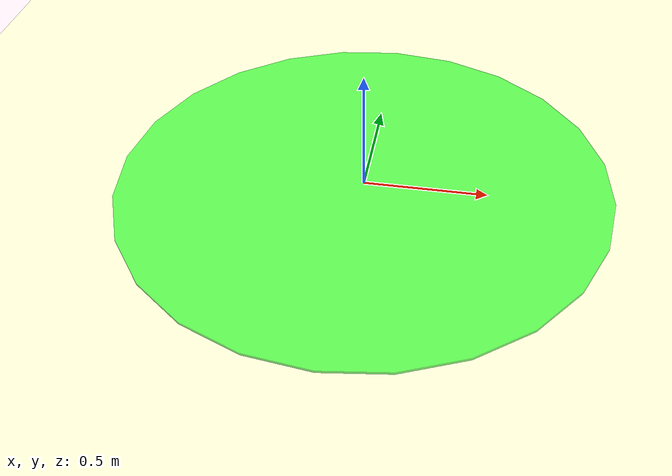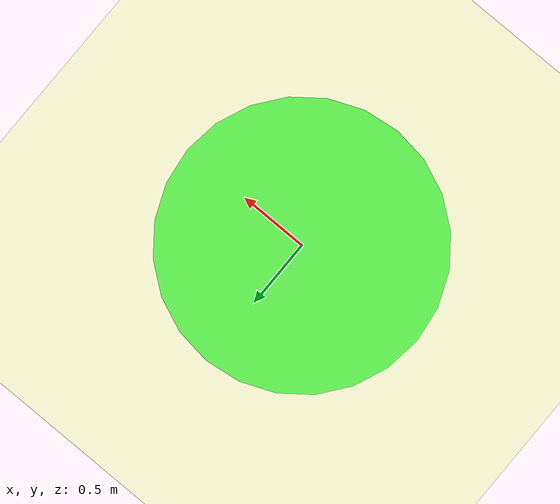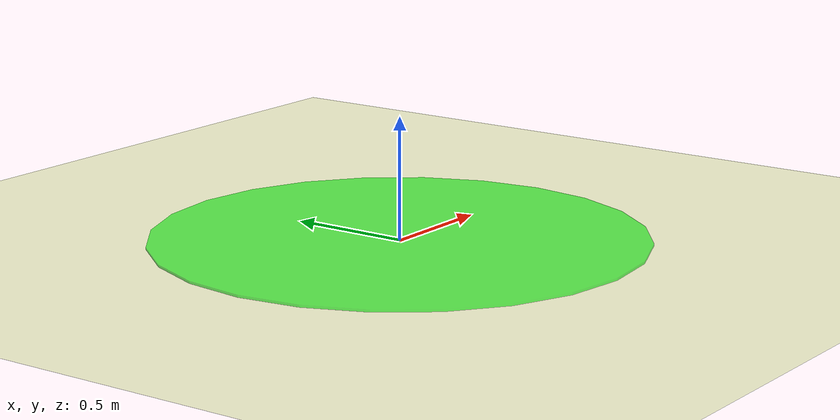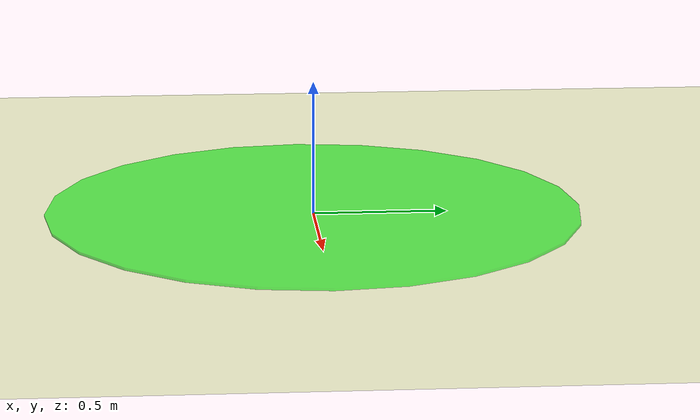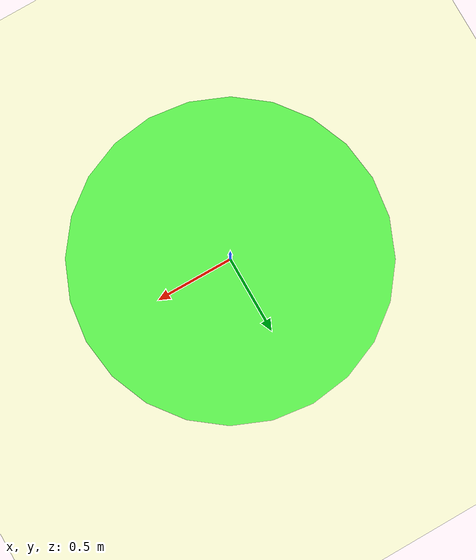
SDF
<?xml version="1.0" ?>
<sdf version="1.10">
  <world name="big_world">
    <physics name="1ms" type="ignored">
      <max_step_size>0.01</max_step_size>
      <real_time_factor>10.0</real_time_factor>
    </physics>

    <!-- Plugins -->
    <plugin filename="gz-sim-physics-system" name="gz::sim::systems::Physics"/>
    <plugin filename="gz-sim-user-commands-system" name="gz::sim::systems::UserCommands"/>
    <plugin filename="gz-sim-scene-broadcaster-system" name="gz::sim::systems::SceneBroadcaster"/>

    <!-- Light -->
    <light type="directional" name="sun">
      <cast_shadows>true</cast_shadows>
      <pose>0 0 10 0 0 0</pose>
      <diffuse>0.8 0.8 0.8 1</diffuse>
      <specular>0.2 0.2 0.2 1</specular>
      <attenuation>
        <range>1000</range>
        <constant>0.9</constant>
        <linear>0.01</linear>
        <quadratic>0.001</quadratic>
      </attenuation>
      <direction>-0.5 0.1 -0.9</direction>
    </light>

    <!-- Ground -->
    <model name="ground_plane">
      <static>true</static>
      <link name="link">
        <collision name="collision">
          <geometry>
            <plane><normal>0 0 1</normal></plane>
          </geometry>
        </collision>
        <visual name="visual">
          <geometry>
            <plane><normal>0 0 1</normal><size>12 12</size></plane>
          </geometry>
          <material>
            <ambient>1 1 0.85 1</ambient>
            <diffuse>1 1 0.85 1</diffuse>
            <specular>0.3 0.3 0.3 1</specular>
          </material>
        </visual>
      </link>
    </model>

    <model name="goal_region">
      <static>true</static>
  	<pose>0 0 0.01 0 0 0</pose> <!-- Centro della scena, appena sopra il piano -->
  	<link name="link">
    	  <visual name="visual">
      	    <geometry>
                <cylinder>
                  <radius>1.0</radius>     <!-- Raggio della goal region -->
                  <length>0.01</length>    <!-- Molto sottile -->
                </cylinder>
      	    </geometry>
            <material>
              <ambient>0.0 1.0 0.0 0.6</ambient>   <!-- Verde trasparente -->
              <diffuse>0.0 1.0 0.0 0.6</diffuse>
            </material>
            <transparency>0.4</transparency>     <!-- Opzionale: rende il cilindro meno opaco -->
            <cast_shadows>false</cast_shadows>   <!-- Per evitare ombre inutili -->
          </visual>
       </link>
    </model>

  </world>

</sdf>
